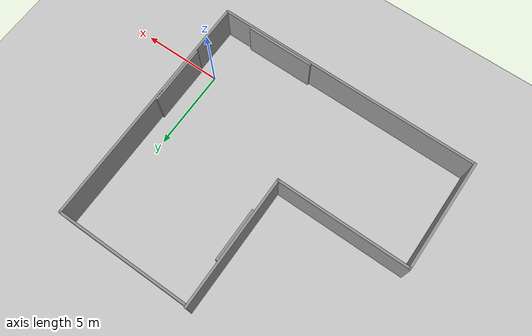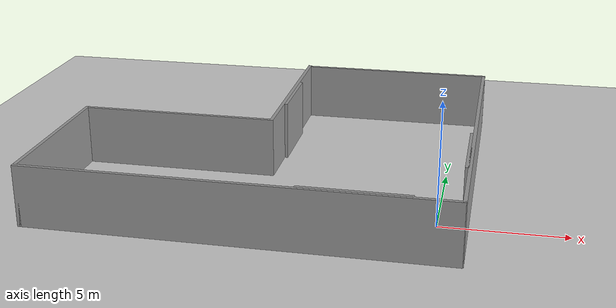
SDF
<sdf version="1.7">
 <world name="default">
  <light name="sun" type="directional">
   <pose>0 0 10 0 -0 0</pose>
   <diffuse>0.8 0.8 0.8 1</diffuse>
   <specular>0.2 0.2 0.2 1</specular>
   <attenuation>
    <range>1000</range>
    <constant>0.9</constant>
    <linear>0.01</linear>
    <quadratic>0.001</quadratic>
   </attenuation>
   <direction>-0.5 0.1 -0.9</direction>
   <spot><inner_angle>0</inner_angle><outer_angle>0</outer_angle><falloff>0</falloff></spot>
  </light>
  <model name="ground_plane">
   <static>1</static>
   <link name="link">
    <collision name="collision">
     <geometry><plane><normal>0 0 1</normal><size>100 100</size></plane></geometry>
     <surface><friction><ode><mu>100</mu><mu2>50</mu2></ode></friction></surface>
    </collision>
    <visual name="visual">
     <cast_shadows>0</cast_shadows>
     <geometry><plane><normal>0 0 1</normal><size>100 100</size></plane></geometry>
     <material>
      <script><uri>file://media/materials/scripts/gazebo.material</uri><name>Gazebo/Grey</name></script>
     </material>
    </visual>
   </link>
  </model>
  <gravity>0 0 -9.8</gravity>
  <magnetic_field>6e-06 2.3e-05 -4.2e-05</magnetic_field>
  <atmosphere type="adiabatic"/>
  <physics type="ode">
   <max_step_size>0.001</max_step_size>
   <real_time_factor>1</real_time_factor>
   <real_time_update_rate>1000</real_time_update_rate>
  </physics>
  <scene><ambient>0.4 0.4 0.4 1</ambient><background>0.7 0.7 0.7 1</background><shadows>1</shadows></scene>
  <spherical_coordinates>
   <surface_model>EARTH_WGS84</surface_model>
   <latitude_deg>0</latitude_deg>
   <longitude_deg>0</longitude_deg>
   <elevation>0</elevation>
   <heading_deg>0</heading_deg>
  </spherical_coordinates>
  <model name="Untitled">
   <pose>-7.18362 4.34457 0 0 -0 0</pose>
   <link name="Wall_1">
    <collision name="Wall_1_Collision">
     <geometry><box><size>15 0.15 2.5</size></box></geometry>
     <pose>0 0 1.25 0 -0 0</pose>
    </collision>
    <visual name="Wall_1_Visual">
     <pose>0 0 1.25 0 -0 0</pose>
     <geometry><box><size>15 0.15 2.5</size></box></geometry>
     <material>
      <script><uri>file://media/materials/scripts/gazebo.material</uri><name>Gazebo/Grey</name></script>
      <ambient>1 1 1 1</ambient>
     </material>
     <meta><layer>0</layer></meta>
    </visual>
    <pose>8.30362 -0.019565 0 0 -0 1.5708</pose>
   </link>
   <link name="Wall_10">
    <collision name="Wall_10_Collision">
     <geometry><box><size>3.25 0.15 2.5</size></box></geometry>
     <pose>0 0 1.25 0 -0 0</pose>
    </collision>
    <visual name="Wall_10_Visual">
     <pose>0 0 1.25 0 -0 0</pose>
     <geometry><box><size>3.25 0.15 2.5</size></box></geometry>
     <material>
      <script><uri>file://media/materials/scripts/gazebo.material</uri><name>Gazebo/Grey</name></script>
      <ambient>1 1 1 1</ambient>
     </material>
     <meta><layer>0</layer></meta>
    </visual>
    <pose>0.036389 3.10264 0 0 -0 -1.5708</pose>
   </link>
   <link name="Wall_12">
    <collision name="Wall_12_Collision">
     <geometry><box><size>4.25 0.15 2.5</size></box></geometry>
     <pose>0 0 1.25 0 -0 0</pose>
    </collision>
    <visual name="Wall_12_Visual">
     <pose>0 0 1.25 0 -0 0</pose>
     <geometry><box><size>4.25 0.15 2.5</size></box></geometry>
     <material>
      <script><uri>file://media/materials/scripts/gazebo.material</uri><name>Gazebo/Grey</name></script>
      <ambient>1 1 1 1</ambient>
     </material>
     <meta><layer>0</layer></meta>
    </visual>
    <pose>4.43868 -7.35213 0 0 -0 0</pose>
   </link>
   <link name="Wall_14">
    <collision name="Wall_14_Collision">
     <geometry><box><size>3.75 0.15 2.5</size></box></geometry>
     <pose>0 0 1.25 0 -0 0</pose>
    </collision>
    <visual name="Wall_14_Visual">
     <pose>0 0 1.25 0 -0 0</pose>
     <geometry><box><size>3.75 0.15 2.5</size></box></geometry>
     <material>
      <script><uri>file://media/materials/scripts/gazebo.material</uri><name>Gazebo/Grey</name></script>
      <ambient>1 1 1 1</ambient>
     </material>
     <meta><layer>0</layer></meta>
    </visual>
    <pose>8.18828 -2.46028 0 0 -0 -1.5708</pose>
   </link>
   <link name="Wall_2">
    <collision name="Wall_2_Collision">
     <geometry><box><size>8.39273 0.15 2.5</size></box></geometry>
     <pose>0 0 1.25 0 -0 0</pose>
    </collision>
    <visual name="Wall_2_Visual">
     <pose>0 0 1.25 0 -0 0</pose>
     <geometry><box><size>8.39273 0.15 2.5</size></box></geometry>
     <material>
      <script><uri>file://media/materials/scripts/gazebo.material</uri><name>Gazebo/Grey</name></script>
      <ambient>1 1 1 1</ambient>
     </material>
     <meta><layer>0</layer></meta>
    </visual>
    <pose>4.18226 7.40543 0 0 -0 3.14159</pose>
   </link>
   <link name="Wall_4">
    <collision name="Wall_4_Collision">
     <geometry><box><size>8.35727 0.15 2.5</size></box></geometry>
     <pose>0 0 1.25 0 -0 0</pose>
    </collision>
    <visual name="Wall_4_Visual">
     <pose>0 0 1.25 0 -0 0</pose>
     <geometry><box><size>8.35727 0.15 2.5</size></box></geometry>
     <material>
      <script><uri>file://media/materials/scripts/gazebo.material</uri><name>Gazebo/Grey</name></script>
      <ambient>1 1 1 1</ambient>
     </material>
     <meta><layer>0</layer></meta>
    </visual>
    <pose>-4.19999 -0.625 0 0 -0 3.14159</pose>
   </link>
   <link name="Wall_5">
    <collision name="Wall_5_Collision">
     <geometry><box><size>7 0.15 2.5</size></box></geometry>
     <pose>0 0 1.25 0 -0 0</pose>
    </collision>
    <visual name="Wall_5_Visual">
     <pose>0 0 1.25 0 -0 0</pose>
     <geometry><box><size>7 0.15 2.5</size></box></geometry>
     <material>
      <script><uri>file://media/materials/scripts/gazebo.material</uri><name>Gazebo/Grey</name></script>
      <ambient>1 1 1 1</ambient>
     </material>
     <meta><layer>0</layer></meta>
    </visual>
    <pose>-8.30362 -4.05 0 0 -0 -1.5708</pose>
   </link>
   <link name="Wall_6">
    <collision name="Wall_6_Collision">
     <geometry><box><size>16.7268 0.15 2.5</size></box></geometry>
     <pose>0 0 1.25 0 -0 0</pose>
    </collision>
    <visual name="Wall_6_Visual">
     <pose>0 0 1.25 0 -0 0</pose>
     <geometry><box><size>16.7268 0.15 2.5</size></box></geometry>
     <material>
      <script><uri>file://media/materials/scripts/gazebo.material</uri><name>Gazebo/Grey</name></script>
      <ambient>1 1 1 1</ambient>
     </material>
     <meta><layer>0</layer></meta>
    </visual>
    <pose>-0.015217 -7.475 0 0 -0 0</pose>
   </link>
   <link name="Wall_8">
    <collision name="Wall_8_Collision">
     <geometry><box><size>8.25 0.15 2.5</size></box></geometry>
     <pose>0 0 1.25 0 -0 0</pose>
    </collision>
    <visual name="Wall_8_Visual">
     <pose>0 0 1.25 0 -0 0</pose>
     <geometry><box><size>8.25 0.15 2.5</size></box></geometry>
     <material>
      <script><uri>file://media/materials/scripts/gazebo.material</uri><name>Gazebo/Grey</name></script>
      <ambient>1 1 1 1</ambient>
     </material>
     <meta><layer>0</layer></meta>
    </visual>
    <pose>-0.096351 3.425 0 0 -0 1.5708</pose>
   </link>
   <static>1</static>
  </model>
 </world>
</sdf>
